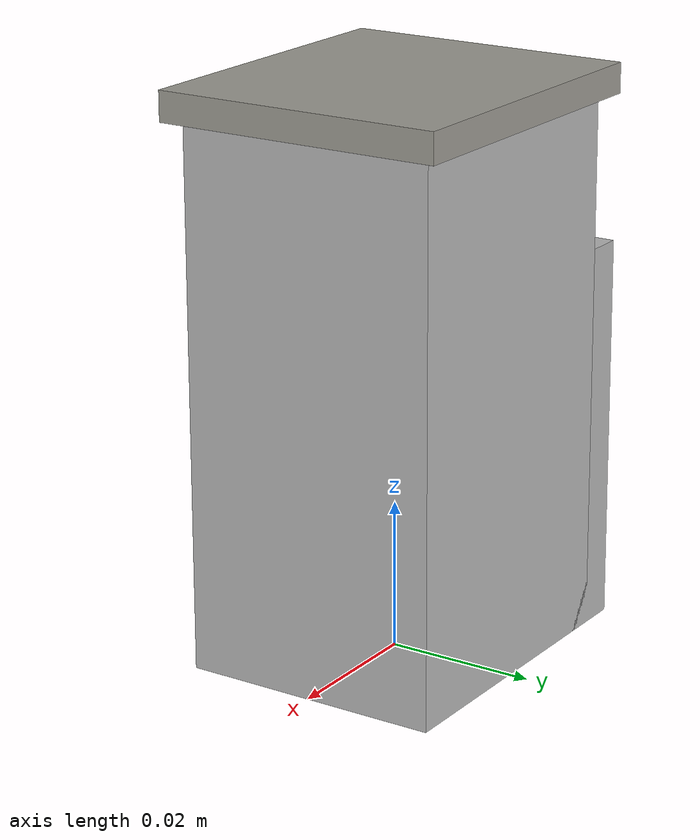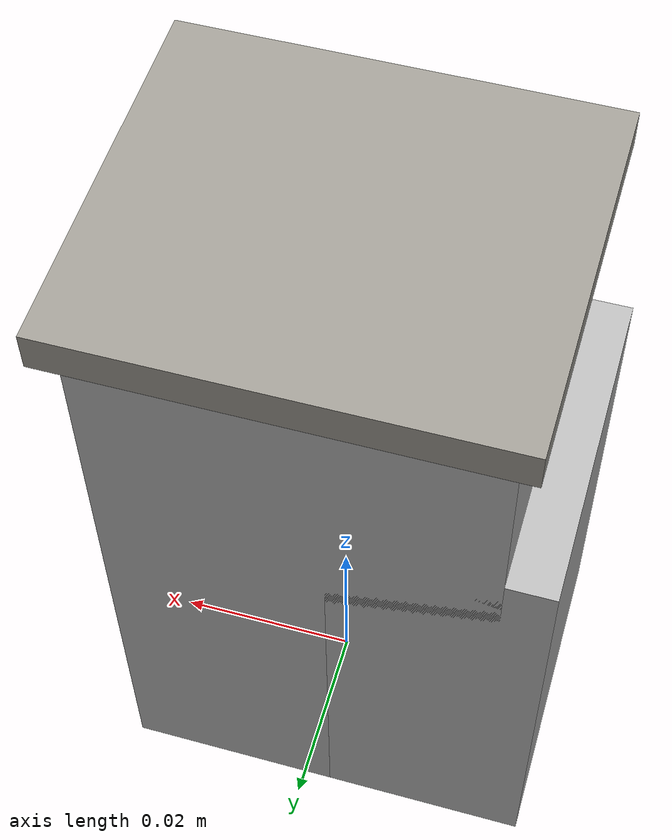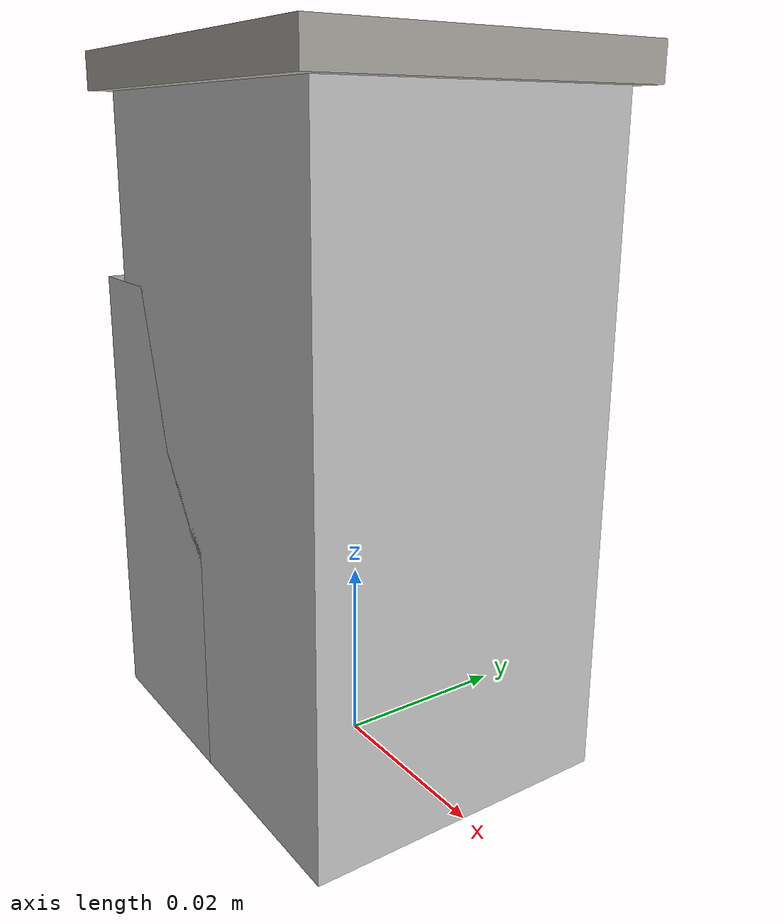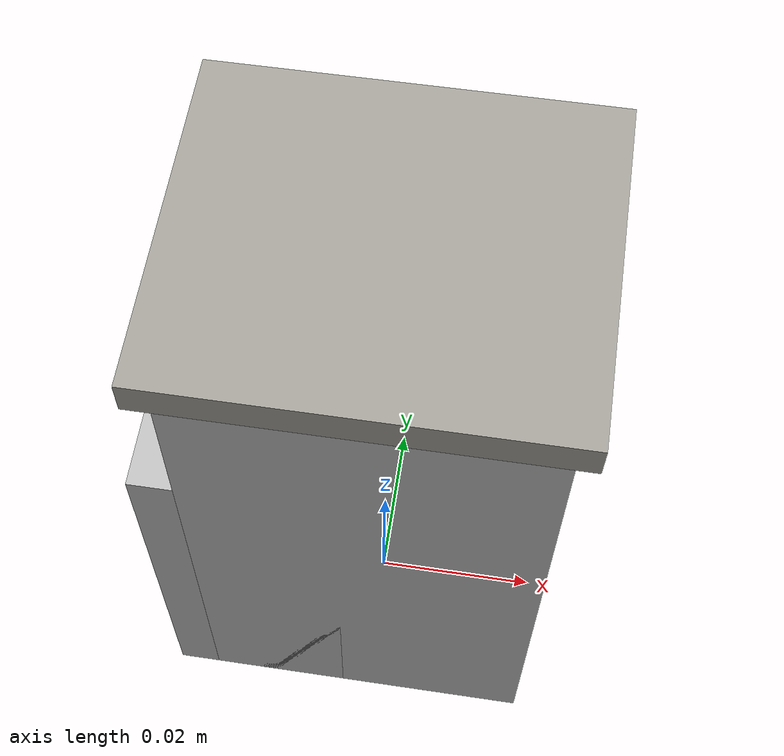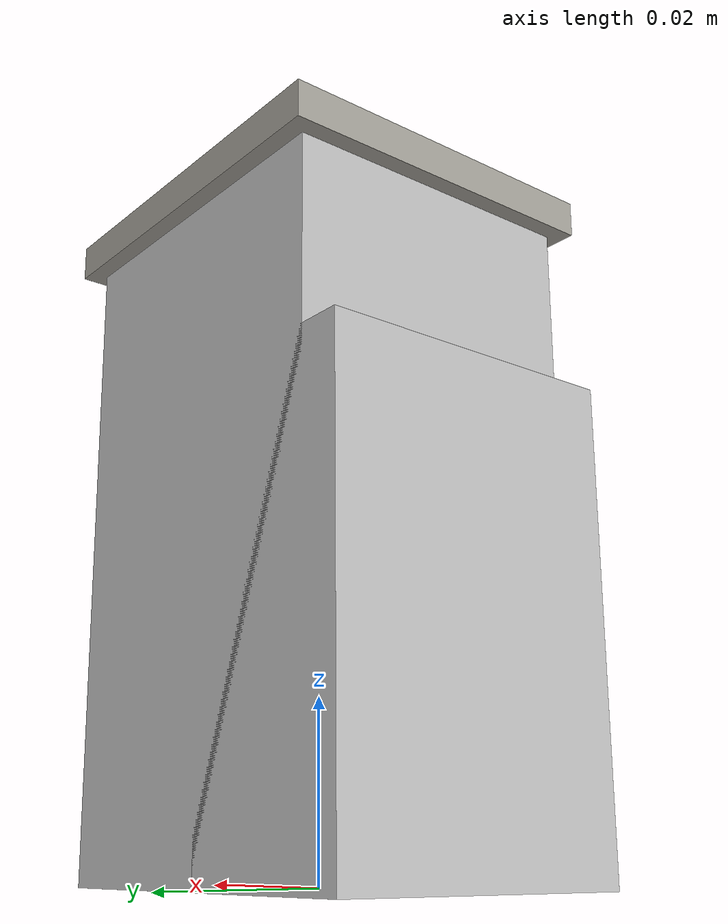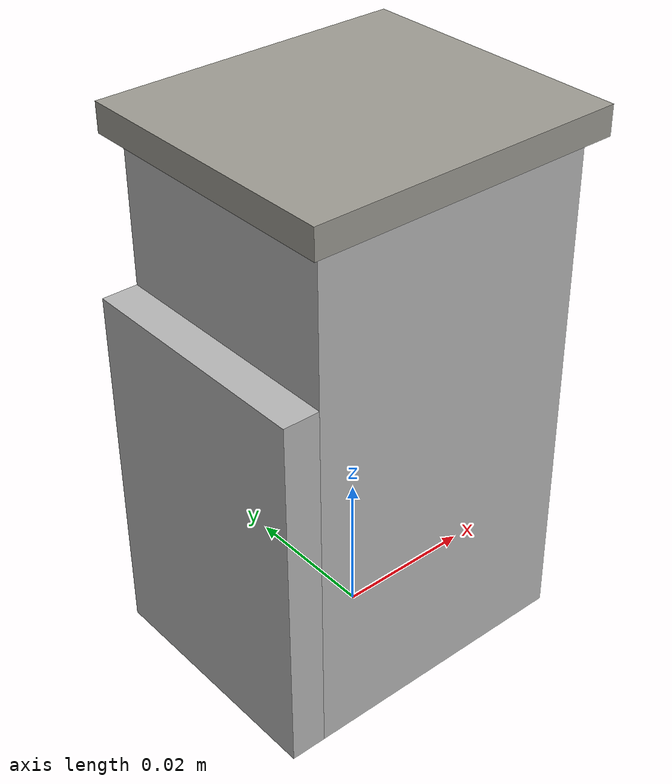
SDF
<?xml version="1.0"?>
<sdf version="1.7">
  <model name="bldg_15">
    <static>true</static>
    <link name="link">
<visual name="wing"><pose>-0.0140 0 0.0259 0 0 0</pose><geometry><box><size>0.0220 0.0350 0.0518</size></box></geometry><material><script><uri>model://bldg_15/materials/scripts</uri><uri>model://bldg_15/materials/textures</uri><name>Facade</name></script></material></visual>
      <collision name="wing_c_c"><pose>-0.0140 0 0.0259 0 0 0</pose><geometry><box><size>0.0220 0.0350 0.0518</size></box></geometry></collision>
      <visual name="mass"><pose>0 0 0.0360 0 0 0</pose><geometry><box><size>0.0400 0.0350 0.0720</size></box></geometry><material><script><uri>model://bldg_15/materials/scripts</uri><uri>model://bldg_15/materials/textures</uri><name>Facade</name></script></material></visual>
      <collision name="mass_c_c"><pose>0 0 0.0360 0 0 0</pose><geometry><box><size>0.0400 0.0350 0.0720</size></box></geometry></collision>
      <visual name="roof"><pose>0 0 0.0740 0 0 0</pose><geometry><box><size>0.0440 0.0390 0.004</size></box></geometry><material><ambient>0.62 0.61 0.58 1</ambient><diffuse>0.62 0.61 0.58 1</diffuse></material></visual>
    </link>
  </model>
</sdf>
